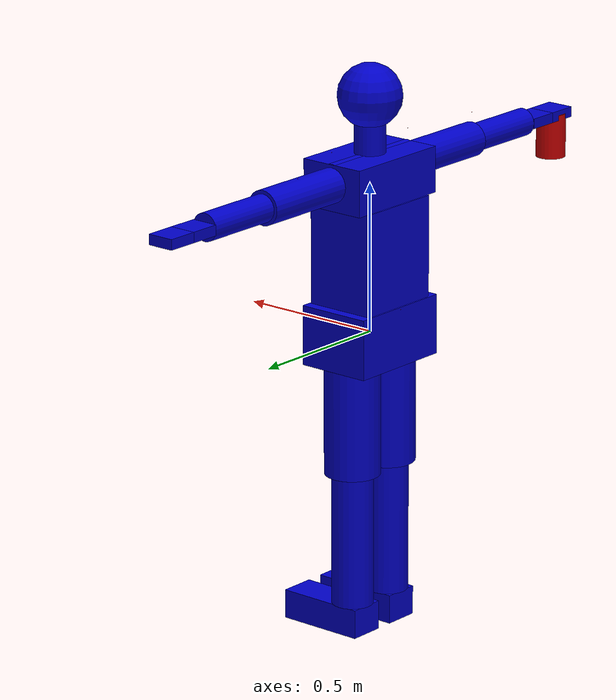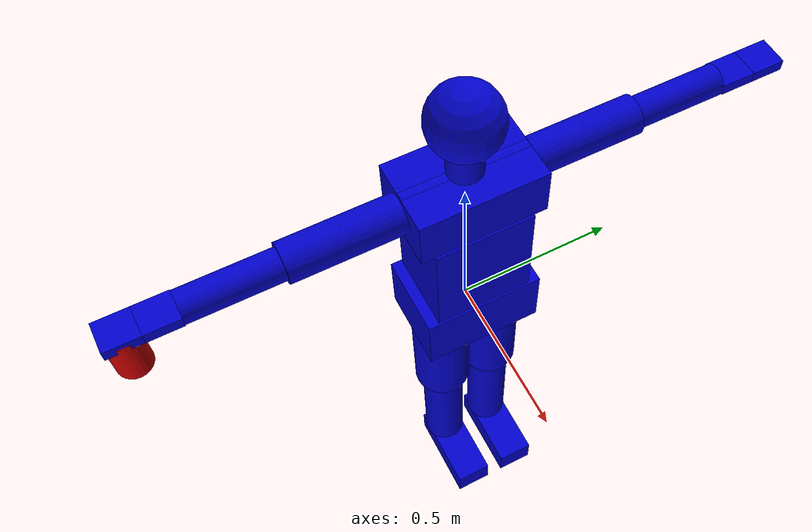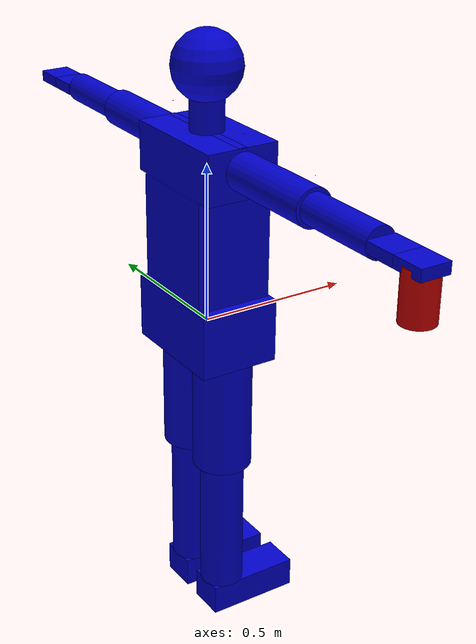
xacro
<?xml version='1.0' encoding='UTF-8'?>
<robot xmlns:xacro="http://www.ros.org/wiki/xacro" name="dhm">
	<xacro:property name="bodyHeight" value="1.9"/>
	<xacro:property name="BMI" value="29.91689750692521"/>
	<xacro:property name="isBMIgreaterThanAverage" value="0"/>
	<xacro:property name="PI" value="3.1415926535897931"/>
	<xacro:property name="bodyMass" value="108"/>
	<xacro:property name="maxVelJoint" value="10.0"/>
	<xacro:property name="forceCapacity" value="1.0"/>
	<xacro:property name="jointDamping" value="0.1"/>
	<xacro:property name="jointFriction" value="0."/>
	<xacro:property name="S5_L5" value="0.108316"/>
	<xacro:property name="L5_T8" value="0.341289"/>
	<xacro:property name="T8_C7" value="0.154148"/>
	<xacro:property name="C7_C1" value="0.102566"/>
	<xacro:property name="C1_headtop" value="0.190476"/>
	<xacro:property name="head_radius" value="0.10656600000000001"/>
	<xacro:property name="headbase_headtop" value="${1.1*C1_headtop}"/>
	<xacro:property name="r_armLength" value="0.331994"/>
	<xacro:property name="r_forearmLength" value="0.271576"/>
	<xacro:property name="r_handLength" value="0.20327"/>
	<xacro:property name="r_spine_shoulder" value="0.18906"/>
	<xacro:property name="r_T8_CSJheight" value="0.086386"/>
	<xacro:property name="r_spine_CSJ" value="0.033455"/>
	<xacro:property name="r_shoulderWidth" value="0.155605"/>
	<xacro:property name="l_armLength" value="0.331994"/>
	<xacro:property name="l_forearmLength" value="0.271576"/>
	<xacro:property name="l_handLength" value="0.20327"/>
	<xacro:property name="l_spine_shoulder" value="0.18906"/>
	<xacro:property name="l_T8_CSJheight" value="0.086386"/>
	<xacro:property name="l_spine_CSJ" value="0.033455"/>
	<xacro:property name="l_shoulderWidth" value="0.155605"/>
	<xacro:property name="r_hipWidth" value="0.088907"/>
	<xacro:property name="r_legLength" value="0.460135"/>
	<xacro:property name="r_shankLength" value="0.450138"/>
	<xacro:property name="r_footThickness" value="0.097768"/>
	<xacro:property name="r_footFrontLength" value="0.25538700000000003"/>
	<xacro:property name="r_footRearLength" value="0.044611"/>
	<xacro:property name="l_hipWidth" value="0.088907"/>
	<xacro:property name="l_legLength" value="0.460135"/>
	<xacro:property name="l_shankLength" value="0.450138"/>
	<xacro:property name="l_footThickness" value="0.097768"/>
	<xacro:property name="l_footFrontLength" value="0.25538700000000003"/>
	<xacro:property name="l_footRearLength" value="0.044611"/>
	<xacro:property name="slimBMI" value="17"/>
	<xacro:property name="normBMI" value="22"/>
	<xacro:property name="fatBMI" value="40"/>
	<xacro:property name="slimAlpha" value="0.9"/>
	<xacro:property name="normAlpha" value="1.0"/>
	<xacro:property name="fatAlpha" value="1.3"/>
	<xacro:if value="${isBMIgreaterThanAverage == 1}">
		<xacro:property name="alpha" value="${1 + (fatAlpha  - normAlpha) * (BMI - normBMI) / (fatBMI - normBMI)}"/>
	</xacro:if>
	<xacro:if value="${isBMIgreaterThanAverage == 0}">
		<xacro:property name="alpha" value="${1 - (normAlpha - slimAlpha) * (normBMI - BMI) / (normBMI - slimBMI)}"/>
	</xacro:if>
	<xacro:property name="collision_width_factor" value="0.66"/>
	<xacro:property name="collision_height_factor" value="0.95"/>
	<xacro:property name="collision_depth_factor" value="0.66"/>
	<xacro:property name="hip_thickness" value="${alpha*0.08}"/>
	<xacro:property name="pelvis_length" value="${S5_L5 + hip_thickness}"/>
	<xacro:property name="pelvis_width" value="${r_hipWidth + l_hipWidth + 0.7*hip_thickness + alpha*0.11}"/>
	<xacro:property name="pelvis_depth" value="${2*alpha*0.11}"/>
	<xacro:property name="lumbarspine_length" value="${L5_T8}"/>
	<xacro:property name="lumbarspine_width" value="${r_hipWidth + l_hipWidth + alpha*0.105}"/>
	<xacro:property name="lumbarspine_depth" value="${2*alpha*0.105}"/>
	<xacro:property name="thoracicspine_length" value="${T8_C7}"/>
	<xacro:property name="thoracicspine_width" value="${0.7*(r_spine_shoulder + l_spine_shoulder) +alpha*0.10}"/>
	<xacro:property name="thoracicspine_depth" value="${2*alpha*0.10}"/>
	<xacro:property name="neck_length" value="${C7_C1}"/>
	<xacro:property name="neck_radius" value="${alpha*0.045}"/>
	<xacro:property name="head_length" value="${headbase_headtop}"/>
	<xacro:property name="r_clavicular_length" value="${r_shoulderWidth}"/>
	<xacro:property name="l_clavicular_length" value="${l_shoulderWidth}"/>
	<xacro:property name="clavicular_radius" value="${alpha*0.06}"/>
	<xacro:property name="r_arm_length" value="${r_armLength}"/>
	<xacro:property name="l_arm_length" value="${l_armLength}"/>
	<xacro:property name="arm_radius" value="${alpha*0.05}"/>
	<xacro:property name="r_forearm_length" value="${r_forearmLength}"/>
	<xacro:property name="l_forearm_length" value="${l_forearmLength}"/>
	<xacro:property name="forearm_radius" value="${alpha*0.04}"/>
	<xacro:property name="r_palm_length" value="${0.5*r_handLength}"/>
	<xacro:property name="l_palm_length" value="${0.5*l_handLength}"/>
	<xacro:property name="palm_width" value="${2*alpha*0.04}"/>
	<xacro:property name="palm_depth" value="${2*alpha*0.015}"/>
	<xacro:property name="r_fingers_length" value="${0.5*r_handLength}"/>
	<xacro:property name="l_fingers_length" value="${0.5*l_handLength}"/>
	<xacro:property name="fingers_width" value="${palm_width}"/>
	<xacro:property name="fingers_depth" value="${palm_depth}"/>
	<xacro:property name="r_thigh_length" value="${r_legLength}"/>
	<xacro:property name="l_thigh_length" value="${l_legLength}"/>
	<xacro:property name="thigh_radius" value="${alpha*0.08}"/>
	<xacro:property name="r_shank_length" value="${r_shankLength}"/>
	<xacro:property name="l_shank_length" value="${l_shankLength}"/>
	<xacro:property name="shank_radius" value="${alpha*0.06}"/>
	<xacro:property name="r_foot_length" value="${r_footFrontLength + r_footRearLength}"/>
	<xacro:property name="l_foot_length" value="${l_footFrontLength + l_footRearLength}"/>
	<xacro:property name="r_foot_width" value="${0.4*r_foot_length}"/>
	<xacro:property name="l_foot_width" value="${0.4*l_foot_length}"/>
	<xacro:property name="r_foot_depth" value="${r_footThickness}"/>
	<xacro:property name="l_foot_depth" value="${l_footThickness}"/>
	<xacro:property name="massNorm" value="${-0.0426 + 1.00096*bodyMass + 0.00058*bodyHeight*100}"/>
	<xacro:property name="lowertorso_mass" value="${bodyMass * (-7.498 + 0.0976*bodyMass + 0.04896*bodyHeight*100) / massNorm}"/>
	<xacro:property name="middletorso_mass" value="${bodyMass * (7.181 + 0.2234*bodyMass - 0.0663*bodyHeight*100) / massNorm}"/>
	<xacro:property name="uppertorso_mass" value="${bodyMass * (8.2144 + 0.1862*bodyMass - 0.0584*bodyHeight*100) / massNorm}"/>
	<xacro:property name="pelvis_mass" value="${lowertorso_mass}"/>
	<xacro:property name="lumbarspine_mass" value="${middletorso_mass}"/>
	<xacro:property name="thoracicspine_mass" value="${(1.0-0.1)*uppertorso_mass}"/>
	<xacro:property name="neckandhead_mass" value="${bodyMass * (1.296 + 0.0171*bodyMass + 0.0143*bodyHeight*100) / massNorm}"/>
	<xacro:property name="neck_mass" value="${0.1*neckandhead_mass}"/>
	<xacro:property name="head_mass" value="${0.9*neckandhead_mass}"/>
	<xacro:property name="clavicular_mass" value="${0.05*uppertorso_mass}"/>
	<xacro:property name="arm_mass" value="${bodyMass * (0.25 + 0.03012*bodyMass - 0.0027*bodyHeight*100) / massNorm}"/>
	<xacro:property name="forearm_mass" value="${bodyMass * (0.3185 + 0.01445*bodyMass - 0.00114*bodyHeight*100) / massNorm}"/>
	<xacro:property name="hand_mass" value="${bodyMass * (-0.1165 + 0.0036*bodyMass + 0.00175*bodyHeight*100) / massNorm}"/>
	<xacro:property name="palm_mass" value="${0.7*hand_mass}"/>
	<xacro:property name="fingers_mass" value="${0.3*hand_mass}"/>
	<xacro:property name="thigh_mass" value="${bodyMass * (-2.649 + 0.1463*bodyMass + 0.0137*bodyHeight*100) / massNorm}"/>
	<xacro:property name="shank_mass" value="${bodyMass * (-1.592 + 0.03616*bodyMass + 0.0121*bodyHeight*100) / massNorm}"/>
	<xacro:property name="foot_mass" value="${bodyMass * (-0.829 + 0.0077*bodyMass + 0.0073*bodyHeight*100) / massNorm}"/>
	<xacro:property name="massSensor" value="0.000000001"/>
	<xacro:property name="radius_load" value="0.05"/>
	<xacro:property name="length_load" value="0.15"/>
	<xacro:property name="mass_load" value="0.780"/>
	<xacro:macro name="box_inertia" params="m Lx Ly Lz">
		<inertia ixx="${1/12 * m * (Ly*Ly + Lz*Lz)}" ixy="0" ixz="0" iyy="${1/12 * m * (Lx*Lx + Lz*Lz)}" iyz="0" izz="${1/12 * m * (Lx*Lx + Ly*Ly)}"/>
	</xacro:macro>
	<xacro:macro name="cylinder_inertia" params="m L r">
		<inertia ixx="${1/12 * m * (3*r*r + L*L)}" ixy="0" ixz="0" iyy="${1/12 * m * (3*r*r + L*L)}" iyz="0" izz="${1/2 * m * r*r}"/>
	</xacro:macro>
	<xacro:macro name="sphere_inertia" params="m r">
		<inertia ixx="${2/5 * m * r*r}" ixy="0" ixz="0" iyy="${2/5 * m * r*r}" iyz="0" izz="${2/5 * m * r*r}"/>
	</xacro:macro>
	<xacro:property name="virtual_radius" value="0.001"/>
	<xacro:macro name="virtual_body" params="name m">
		<link name="${name}">
			<inertial>
				<mass value="${m}"/>
				<origin rpy="0 0 0" xyz="0 0 0"/>
				<sphere_inertia m="${m}" r="${virtual_radius}"/>
			</inertial>
		</link>
	</xacro:macro>
	<material name="blue">
		<color rgba="0 0 0.8 1"/>
	</material>
	<material name="red">
		<color rgba="0.8 0 0 1"/>
	</material>
	<link name="pelvis">
		<visual>
			<geometry>
				<box size="${pelvis_depth} ${pelvis_width} ${pelvis_length}"/>
			</geometry>
			<origin rpy="0 0 0" xyz="0 0 ${pelvis_length/2-hip_thickness}"/>
			<material name="blue"/>
		</visual>
		<collision>
			<geometry>
				<box size="${pelvis_depth} ${pelvis_width} ${pelvis_length}"/>
			</geometry>
			<origin rpy="0 0 0" xyz="0 0 ${pelvis_length/2-hip_thickness}"/>
		</collision>
		<inertial>
			<mass value="${0.7*pelvis_mass}"/>
			<origin rpy="0 0 0" xyz="0 0 ${pelvis_length/2-hip_thickness}"/>
			<box_inertia Lx="${pelvis_depth}" Ly="${pelvis_width}" Lz="${pelvis_length}" m="${0.7*pelvis_mass}"/>
		</inertial>
	</link>
	<virtual_body m="${0.1*pelvis_mass}" name="body_L5_1"/>
	<virtual_body m="${0.1*lumbarspine_mass}" name="body_L5_2"/>
	<link name="lumbar_spine">
		<visual>
			<geometry>
				<box size="${lumbarspine_depth} ${lumbarspine_width} ${lumbarspine_length}"/>
			</geometry>
			<origin rpy="0 0 0" xyz="0 0 ${lumbarspine_length/2}"/>
			<material name="blue"/>
		</visual>
		<collision>
			<geometry>
				<box size="${lumbarspine_depth} ${lumbarspine_width} ${lumbarspine_length}"/>
			</geometry>
			<origin rpy="0 0 0" xyz="0 0 ${lumbarspine_length/2}"/>
		</collision>
		<inertial>
			<mass value="${0.8*lumbarspine_mass}"/>
			<origin rpy="0 0 0" xyz="0 0 ${lumbarspine_length/2}"/>
			<box_inertia Lx="${lumbarspine_depth}" Ly="${lumbarspine_width}" Lz="${lumbarspine_length}" m="${0.8*lumbarspine_mass}"/>
		</inertial>
	</link>
	<virtual_body m="${0.1*lumbarspine_mass}" name="body_T8_1"/>
	<virtual_body m="${0.1*thoracicspine_mass}" name="body_T8_2"/>
	<link name="thoracic_spine">
		<visual>
			<geometry>
				<box size="${thoracicspine_depth} ${thoracicspine_width} ${thoracicspine_length}"/>
			</geometry>
			<origin rpy="0 0 0" xyz="0 0 ${thoracicspine_length/2}"/>
			<material name="blue"/>
		</visual>
		<collision>
			<geometry>
				<box size="${thoracicspine_depth} ${thoracicspine_width} ${thoracicspine_length}"/>
			</geometry>
			<origin rpy="0 0 0" xyz="0 0 ${thoracicspine_length/2}"/>
		</collision>
		<inertial>
			<mass value="${0.65*thoracicspine_mass}"/>
			<origin rpy="0 0 0" xyz="0 0 ${thoracicspine_length/2}"/>
			<box_inertia Lx="${thoracicspine_depth}" Ly="${thoracicspine_width}" Lz="${thoracicspine_length}" m="${0.65*thoracicspine_mass}"/>
		</inertial>
	</link>
	<virtual_body m="${0.05*thoracicspine_mass}" name="body_C7_1"/>
	<virtual_body m="${0.2*neck_mass}" name="body_C7_2"/>
	<link name="neck">
		<visual>
			<geometry>
				<cylinder length="${neck_length}" radius="${neck_radius}"/>
			</geometry>
			<origin rpy="0 0 0" xyz="0 0 ${neck_length/2}"/>
			<material name="blue"/>
		</visual>
		<collision>
			<geometry>
				<box size="${neck_radius*2} ${neck_radius*2} ${neck_length}"/>
			</geometry>
			<origin rpy="0 0 0" xyz="0 0 ${neck_length/2}"/>
		</collision>
		<inertial>
			<mass value="${0.8*neck_mass}"/>
			<origin rpy="0 0 0" xyz="0 0 ${neck_length/2}"/>
			<cylinder_inertia L="${neck_length}" m="${0.8*neck_mass}" r="${neck_radius}"/>
		</inertial>
	</link>
	<virtual_body m="${0.1*head_mass}" name="body_C1"/>
	<link name="head">
		<visual>
			<geometry>
				<sphere radius="${head_radius}"/>
			</geometry>
			<origin rpy="0 0 0" xyz="0 0 ${C1_headtop - headbase_headtop/2}"/>
			<material name="blue"/>
		</visual>
		<collision>
			<geometry>
				<sphere radius="${head_radius*0.8}"/>
			</geometry>
			<origin rpy="0 0 0" xyz="0 0 ${C1_headtop - headbase_headtop/2}"/>
		</collision>
		<inertial>
			<mass value="${0.9*head_mass}"/>
			<origin rpy="0 0 0" xyz="0 0 ${C1_headtop - headbase_headtop/2}"/>
			<cylinder_inertia L="${head_length}" m="${0.9*head_mass}" r="${head_radius}"/>
		</inertial>
	</link>
	<virtual_body m="${0.1*thoracicspine_mass}" name="body_T4_right_clavicular"/>
	<link name="right_clavicular">
		<visual>
			<geometry>
				<cylinder length="${r_clavicular_length}" radius="${clavicular_radius}"/>
			</geometry>
			<origin rpy="${PI/2} 0 0" xyz="0 ${-r_clavicular_length/2} 0"/>
			<material name="blue"/>
		</visual>
		<inertial>
			<mass value="${0.9*clavicular_mass}"/>
			<origin rpy="${PI/2} 0 0" xyz="0 ${-r_clavicular_length/2} 0"/>
			<cylinder_inertia L="${r_clavicular_length}" m="${0.9*clavicular_mass}" r="${clavicular_radius}"/>
		</inertial>
	</link>
	<virtual_body m="${0.1*clavicular_mass}" name="body_right_shoulder_1"/>
	<virtual_body m="${0.1*arm_mass}" name="body_right_shoulder_2"/>
	<link name="right_arm">
		<visual>
			<geometry>
				<cylinder length="${r_arm_length}" radius="${arm_radius}"/>
			</geometry>
			<origin rpy="${PI/2} 0 0" xyz="0 ${-r_arm_length/2} 0"/>
			<material name="blue"/>
		</visual>
		<collision>
			<geometry>
				<box size="${arm_radius*cos(PI/4)*2} ${arm_radius*cos(PI/4)*2} ${r_arm_length}"/>
			</geometry>
			<origin rpy="${PI/2} 0 0" xyz="0 ${-r_arm_length/2} 0"/>
		</collision>
		<inertial>
			<mass value="${0.8*arm_mass}"/>
			<origin rpy="${PI/2} 0 0" xyz="0 ${-r_arm_length/2} 0"/>
			<cylinder_inertia L="${r_arm_length}" m="${0.8*arm_mass}" r="${arm_radius}"/>
		</inertial>
	</link>
	<virtual_body m="${0.1*arm_mass}" name="body_right_elbow"/>
	<link name="right_forearm">
		<visual>
			<geometry>
				<cylinder length="${r_forearm_length}" radius="${forearm_radius}"/>
			</geometry>
			<origin rpy="${PI/2} 0 0" xyz="0 ${-r_forearm_length/2} 0"/>
			<material name="blue"/>
		</visual>
		<collision>
			<geometry>
				<box size="${forearm_radius*cos(PI/4)*2} ${forearm_radius*cos(PI/4)*2} ${r_forearm_length}"/>
			</geometry>
			<origin rpy="${PI/2} 0 0" xyz="0 ${-r_forearm_length/2} 0"/>
		</collision>
		<inertial>
			<mass value="${0.9*forearm_mass}"/>
			<origin rpy="${PI/2} 0 0" xyz="0 ${-r_forearm_length/2} 0"/>
			<cylinder_inertia L="${-r_forearm_length}" m="${0.9*forearm_mass}" r="${forearm_radius}"/>
		</inertial>
	</link>
	<virtual_body m="${0.1*forearm_mass}" name="body_right_wrist"/>
	<link name="right_palm">
		<visual>
			<geometry>
				<box size="${palm_width} ${palm_depth} ${r_palm_length}"/>
			</geometry>
			<origin rpy="${PI/2} 0 0" xyz="0 ${-r_palm_length/2} 0"/>
			<material name="blue"/>
		</visual>
		<collision>
			<geometry>
				<box size="${palm_width} ${palm_depth} ${r_palm_length} "/>
			</geometry>
			<origin rpy="${PI/2} 0 0" xyz="0 ${-r_palm_length/2} 0"/>
		</collision>
		<inertial>
			<mass value="${palm_mass}"/>
			<origin rpy="${PI/2} 0 0" xyz="0 ${-r_palm_length/2} 0"/>
			<box_inertia Lx="${palm_width}" Ly="${palm_depth}" Lz="${r_palm_length}" m="${palm_mass}"/>
		</inertial>
	</link>
	<link name="right_fingers">
		<visual>
			<geometry>
				<box size="${fingers_width} ${fingers_depth} ${r_fingers_length}"/>
			</geometry>
			<origin rpy="${PI/2} 0 0" xyz="0 ${-r_fingers_length/2} 0"/>
			<material name="blue"/>
		</visual>
		<collision>
			<geometry>
				<box size="${fingers_width} ${fingers_depth} ${r_fingers_length} "/>
			</geometry>
			<origin rpy="${PI/2} 0 0" xyz="0 ${-r_fingers_length/2} 0"/>
		</collision>
		<inertial>
			<mass value="${fingers_mass}"/>
			<origin rpy="${PI/2} 0 0" xyz="0 ${-r_fingers_length/2} 0"/>
			<box_inertia Lx="${fingers_width}" Ly="${fingers_depth}" Lz="${r_fingers_length}" m="${fingers_mass}"/>
		</inertial>
	</link>
	<link name="right_load">
		<visual>
			<geometry>
				<cylinder length="${length_load}" radius="${radius_load}"/>
			</geometry>
			<origin rpy="0 0 0" xyz="0 0 0"/>
			<material name="red"/>
		</visual>
		<inertial>
			<mass value="${mass_load}"/>
			<origin rpy="0 0 0" xyz="0 0 0"/>
			<cylinder_inertia L="${length_load}" m="${mass_load}" r="${radius_load}"/>
		</inertial>
	</link>
	<virtual_body m="${0.1*thoracicspine_mass}" name="body_T4_left_clavicular"/>
	<link name="left_clavicular">
		<visual>
			<geometry>
				<cylinder length="${l_clavicular_length}" radius="${clavicular_radius}"/>
			</geometry>
			<origin rpy="${PI/2} 0 0" xyz="0 ${l_clavicular_length/2} 0"/>
			<material name="blue"/>
		</visual>
		<inertial>
			<mass value="${0.9*clavicular_mass}"/>
			<origin rpy="${PI/2} 0 0" xyz="0 ${l_clavicular_length/2} 0"/>
			<cylinder_inertia L="${l_clavicular_length}" m="${0.9*clavicular_mass}" r="${clavicular_radius}"/>
		</inertial>
	</link>
	<virtual_body m="${0.1*clavicular_mass}" name="body_left_shoulder_1"/>
	<virtual_body m="${0.1*arm_mass}" name="body_left_shoulder_2"/>
	<link name="left_arm">
		<visual>
			<geometry>
				<cylinder length="${l_arm_length}" radius="${arm_radius}"/>
			</geometry>
			<origin rpy="${PI/2} 0 0" xyz="0 ${l_arm_length/2} 0"/>
			<material name="blue"/>
		</visual>
		<collision>
			<geometry>
				<box size="${arm_radius*cos(PI/4)*2} ${arm_radius*cos(PI/4)*2} ${l_arm_length}"/>
			</geometry>
			<origin rpy="${PI/2} 0 0" xyz="0 ${l_arm_length/2} 0"/>
		</collision>
		<inertial>
			<mass value="${0.8*arm_mass}"/>
			<origin rpy="${PI/2} 0 0" xyz="0 ${l_arm_length/2} 0"/>
			&gt;
			<cylinder_inertia L="${l_arm_length}" m="${0.8*arm_mass}" r="${arm_radius}"/>
		</inertial>
	</link>
	<virtual_body m="${0.1*arm_mass}" name="body_left_elbow"/>
	<link name="left_forearm">
		<visual>
			<geometry>
				<cylinder length="${l_forearm_length}" radius="${forearm_radius}"/>
			</geometry>
			<origin rpy="${PI/2} 0 0" xyz="0 ${l_forearm_length/2} 0"/>
			<material name="blue"/>
		</visual>
		<collision>
			<geometry>
				<box size="${forearm_radius*cos(PI/4)*2} ${forearm_radius*cos(PI/4)*2} ${l_forearm_length}"/>
			</geometry>
			<origin rpy="${PI/2} 0 0" xyz="0 ${l_forearm_length/2} 0"/>
		</collision>
		<inertial>
			<mass value="${0.9*forearm_mass}"/>
			<origin rpy="${PI/2} 0 0" xyz="0 ${l_forearm_length/2} 0"/>
			<cylinder_inertia L="${l_forearm_length}" m="${0.9*forearm_mass}" r="${forearm_radius}"/>
		</inertial>
	</link>
	<virtual_body m="${0.1*forearm_mass}" name="body_left_wrist"/>
	<link name="left_palm">
		<visual>
			<geometry>
				<box size="${palm_width} ${palm_depth} ${l_palm_length}"/>
			</geometry>
			<origin rpy="${PI/2} 0 0" xyz="0 ${l_palm_length/2} 0"/>
			<material name="blue"/>
		</visual>
		<collision>
			<geometry>
				<box size="${palm_width} ${palm_depth} ${l_palm_length}"/>
			</geometry>
			<origin rpy="${PI/2} 0 0" xyz="0 ${l_palm_length/2} 0"/>
		</collision>
		<inertial>
			<mass value="${palm_mass}"/>
			<origin rpy="${PI/2} 0 0" xyz="0 ${l_palm_length/2} 0"/>
			<box_inertia Lx="${palm_width}" Ly="${palm_depth}" Lz="${l_palm_length}" m="${palm_mass}"/>
		</inertial>
	</link>
	<link name="left_fingers">
		<visual>
			<geometry>
				<box size="${fingers_width} ${fingers_depth} ${l_fingers_length}"/>
			</geometry>
			<origin rpy="${PI/2} 0 0" xyz="0 ${l_fingers_length/2} 0"/>
			<material name="blue"/>
		</visual>
		<collision>
			<geometry>
				<box size="${fingers_width} ${fingers_depth} ${l_fingers_length}"/>
			</geometry>
			<origin rpy="${PI/2} 0 0" xyz="0 ${l_fingers_length/2} 0"/>
		</collision>
		<inertial>
			<mass value="${fingers_mass}"/>
			<origin rpy="${PI/2} 0 0" xyz="0 ${l_fingers_length/2} 0"/>
			<box_inertia Lx="${fingers_width}" Ly="${fingers_depth}" Lz="${l_fingers_length}" m="${fingers_mass}"/>
		</inertial>
	</link>
	<virtual_body m="${0.1*pelvis_mass}" name="body_right_hip_1"/>
	<virtual_body m="${0.1*thigh_mass}" name="body_right_hip_2"/>
	<link name="right_thigh">
		<visual>
			<geometry>
				<cylinder length="${r_thigh_length}" radius="${thigh_radius}"/>
			</geometry>
			<origin rpy="0 0 0" xyz="0 0 ${-r_thigh_length/2}"/>
			<material name="blue"/>
		</visual>
		<collision>
			<geometry>
				<box size="${thigh_radius*cos(PI/4)*2} ${thigh_radius*cos(PI/4)*2} ${r_thigh_length}"/>
			</geometry>
			<origin rpy="0 0 0" xyz="0 0 ${-r_thigh_length/2}"/>
		</collision>
		<inertial>
			<mass value="${0.8*thigh_mass}"/>
			<origin rpy="0 0 0" xyz="0 0 ${-r_thigh_length/2}"/>
			<cylinder_inertia L="${r_thigh_length}" m="${0.8*thigh_mass}" r="${thigh_radius}"/>
		</inertial>
	</link>
	<virtual_body m="${0.1*thigh_mass}" name="body_right_knee"/>
	<link name="right_shank">
		<visual>
			<geometry>
				<cylinder length="${r_shank_length}" radius="${shank_radius}"/>
			</geometry>
			<origin rpy="0 0 0" xyz="0 0 ${-r_shank_length/2}"/>
			<material name="blue"/>
		</visual>
		<collision>
			<geometry>
				<box size="${shank_radius*cos(PI/4)*2} ${shank_radius*cos(PI/4)*2} ${r_shank_length}"/>
			</geometry>
			<origin rpy="0 0 0" xyz="0 0 ${-r_shank_length/2}"/>
		</collision>
		<inertial>
			<mass value="${0.9*shank_mass}"/>
			<origin rpy="0 0 0" xyz="0 0 ${-r_shank_length/2}"/>
			<cylinder_inertia L="${r_shank_length}" m="${0.9*shank_mass}" r="${shank_radius}"/>
		</inertial>
	</link>
	<virtual_body m="${0.1*shank_mass}" name="body_right_ankle"/>
	<link name="right_foot">
		<visual>
			<geometry>
				<box size="${r_foot_length} ${r_foot_width} ${r_foot_depth}"/>
			</geometry>
			<origin rpy="0 0 0" xyz="${r_foot_length/2-0.2*r_foot_length} 0 ${-r_foot_depth/2}"/>
			<material name="blue"/>
		</visual>
		<collision>
			<geometry>
				<box size="${r_foot_length} ${r_foot_width} ${r_foot_depth}"/>
			</geometry>
			<origin rpy="0 0 0" xyz="${r_foot_length/2-0.2*r_foot_length} 0 ${-r_foot_depth/2}"/>
		</collision>
		<inertial>
			<mass value="${foot_mass}"/>
			<origin rpy="0 0 0" xyz="${r_foot_length/2-0.2*r_foot_length} 0 ${-r_foot_depth/2}"/>
			<box_inertia Lx="${r_foot_length}" Ly="${r_foot_width}" Lz="${r_foot_depth}" m="${foot_mass}"/>
		</inertial>
	</link>
	<virtual_body m="${0.1*pelvis_mass}" name="body_left_hip_1"/>
	<virtual_body m="${0.1*thigh_mass}" name="body_left_hip_2"/>
	<link name="left_thigh">
		<visual>
			<geometry>
				<cylinder length="${l_thigh_length}" radius="${thigh_radius}"/>
			</geometry>
			<origin rpy="0 0 0" xyz="0 0 ${-l_thigh_length/2}"/>
			<material name="blue"/>
		</visual>
		<collision>
			<geometry>
				<box size="${thigh_radius*cos(PI/4)*2} ${thigh_radius*cos(PI/4)*2} ${l_thigh_length}"/>
			</geometry>
			<origin rpy="0 0 0" xyz="0 0 ${-l_thigh_length/2}"/>
			&gt;
		</collision>
		<inertial>
			<mass value="${0.8*thigh_mass}"/>
			<origin rpy="0 0 0" xyz="0 0 ${-l_thigh_length/2}"/>
			<cylinder_inertia L="${l_thigh_length}" m="${0.8*thigh_mass}" r="${thigh_radius}"/>
		</inertial>
	</link>
	<virtual_body m="${0.1*thigh_mass}" name="body_left_knee"/>
	<link name="left_shank">
		<visual>
			<geometry>
				<cylinder length="${l_shank_length}" radius="${shank_radius}"/>
			</geometry>
			<origin rpy="0 0 0" xyz="0 0 ${-l_shank_length/2}"/>
			<material name="blue"/>
		</visual>
		<collision>
			<geometry>
				<box size="${shank_radius*cos(PI/4)*2} ${shank_radius*cos(PI/4)*2} ${l_shank_length}"/>
			</geometry>
			<origin rpy="0 0 0" xyz="0 0 ${-l_shank_length/2}"/>
		</collision>
		<inertial>
			<mass value="${0.9*shank_mass}"/>
			<origin rpy="0 0 0" xyz="0 0 ${-l_shank_length/2}"/>
			<cylinder_inertia L="${l_shank_length}" m="${0.9*shank_mass}" r="${shank_radius}"/>
		</inertial>
	</link>
	<virtual_body m="${0.1*shank_mass}" name="body_left_ankle"/>
	<link name="left_foot">
		<visual>
			<geometry>
				<box size="${l_foot_length} ${l_foot_width} ${l_foot_depth}"/>
			</geometry>
			<origin rpy="0 0 0" xyz="${l_foot_length/2-0.2*l_foot_length} 0 ${-l_foot_depth/2}"/>
			<material name="blue"/>
		</visual>
		<collision>
			<geometry>
				<box size="${l_foot_length} ${l_foot_width} ${l_foot_depth}"/>
			</geometry>
			<origin rpy="0 0 0" xyz="${l_foot_length/2-0.2*l_foot_length} 0 ${-l_foot_depth/2}"/>
		</collision>
		<inertial>
			<mass value="${foot_mass}"/>
			<origin rpy="0 0 0" xyz="${l_foot_length/2-0.2*l_foot_length} 0 ${-l_foot_depth/2}"/>
			<box_inertia Lx="${l_foot_length}" Ly="${l_foot_width}" Lz="${l_foot_depth}" m="${foot_mass}"/>
		</inertial>
	</link>
	<joint name="lumbarspine_X" type="revolute">
		<parent link="pelvis"/>
		<child link="body_L5_1"/>
		<axis xyz="1 0 0"/>
		<origin xyz="0 0 ${S5_L5}"/>
		<limit effort="${155*forceCapacity}" lower="-0.7" upper="0.7" velocity="${maxVelJoint}"/>
		<dynamics damping="${jointDamping}" friction="${jointFriction}"/>
	</joint>
	<joint name="lumbarspine_Y" type="revolute">
		<parent link="body_L5_1"/>
		<child link="body_L5_2"/>
		<axis xyz="0 1 0"/>
		<origin xyz="0 0 0"/>
		<limit effort="${228*forceCapacity}" lower="-0.7" upper="0.9" velocity="${maxVelJoint}"/>
		<dynamics damping="${jointDamping}" friction="${jointFriction}"/>
	</joint>
	<joint name="lumbarspine_Z" type="revolute">
		<parent link="body_L5_2"/>
		<child link="lumbar_spine"/>
		<axis xyz="0 0 1"/>
		<origin xyz="0 0 0"/>
		<limit effort="${65*forceCapacity}" lower="-0.7" upper="0.7" velocity="${maxVelJoint}"/>
		<dynamics damping="${jointDamping}" friction="${jointFriction}"/>
	</joint>
	<joint name="thoracicspine_X" type="revolute">
		<parent link="lumbar_spine"/>
		<child link="body_T8_1"/>
		<axis xyz="1 0 0"/>
		<origin xyz="0 0 ${L5_T8}"/>
		<limit effort="${155*forceCapacity}" lower="-0.7" upper="0.7" velocity="${maxVelJoint}"/>
		<dynamics damping="${jointDamping}" friction="${jointFriction}"/>
	</joint>
	<joint name="thoracicspine_Y" type="revolute">
		<parent link="body_T8_1"/>
		<child link="body_T8_2"/>
		<axis xyz="0 1 0"/>
		<origin xyz="0 0 0"/>
		<limit effort="${228*forceCapacity}" lower="-0.7" upper="0.9" velocity="${maxVelJoint}"/>
		<dynamics damping="${jointDamping}" friction="${jointFriction}"/>
	</joint>
	<joint name="thoracicspine_Z" type="revolute">
		<parent link="body_T8_2"/>
		<child link="thoracic_spine"/>
		<axis xyz="0 0 1"/>
		<origin xyz="0 0 0"/>
		<limit effort="${65*forceCapacity}" lower="-0.7" upper="0.7" velocity="${maxVelJoint}"/>
		<dynamics damping="${jointDamping}" friction="${jointFriction}"/>
	</joint>
	<joint name="neck_X" type="revolute">
		<parent link="thoracic_spine"/>
		<child link="body_C7_1"/>
		<axis xyz="1 0 0"/>
		<origin xyz="0 0 ${T8_C7}"/>
		<limit effort="50" lower="-0.87" upper="0.87" velocity="${maxVelJoint}"/>
		<dynamics damping="${jointDamping}" friction="${jointFriction}"/>
	</joint>
	<joint name="neck_Y" type="revolute">
		<parent link="body_C7_1"/>
		<child link="body_C7_2"/>
		<axis xyz="0 1 0"/>
		<origin xyz="0 0 0"/>
		<limit effort="50" lower="-0.87" upper="1.5" velocity="${maxVelJoint}"/>
		<dynamics damping="${jointDamping}" friction="${jointFriction}"/>
	</joint>
	<joint name="neck_Z" type="revolute">
		<parent link="body_C7_2"/>
		<child link="neck"/>
		<axis xyz="0 0 1"/>
		<origin xyz="0 0 0"/>
		<limit effort="50" lower="-1.5" upper="1.5" velocity="${maxVelJoint}"/>
		<dynamics damping="${jointDamping}" friction="${jointFriction}"/>
	</joint>
	<joint name="head_X" type="revolute">
		<parent link="neck"/>
		<child link="body_C1"/>
		<axis xyz="1 0 0"/>
		<origin xyz="0 0 ${C7_C1}"/>
		<limit effort="20" lower="-0.87" upper="0.87" velocity="${maxVelJoint}"/>
		<dynamics damping="${jointDamping}" friction="${jointFriction}"/>
	</joint>
	<joint name="head_Y" type="revolute">
		<parent link="body_C1"/>
		<child link="head"/>
		<axis xyz="0 1 0"/>
		<origin xyz="0 0 0"/>
		<limit effort="20" lower="-0.87" upper="1.5" velocity="${maxVelJoint}"/>
		<dynamics damping="${jointDamping}" friction="${jointFriction}"/>
	</joint>
	<joint name="right_clavicular_X" type="revolute">
		<parent link="thoracic_spine"/>
		<child link="body_T4_right_clavicular"/>
		<axis xyz="1 0 0"/>
		<origin rpy="0 0 0" xyz="0 ${-r_spine_CSJ} ${r_T8_CSJheight}"/>
		<limit effort="${105*forceCapacity}" lower="-0.2" upper="0.4" velocity="${maxVelJoint}"/>
		<dynamics damping="${jointDamping}" friction="${jointFriction}"/>
	</joint>
	<joint name="right_clavicular_Z" type="revolute">
		<parent link="body_T4_right_clavicular"/>
		<child link="right_clavicular"/>
		<axis xyz="0 0 1"/>
		<origin xyz="0 0 0"/>
		<limit effort="${107*forceCapacity}" lower="-0.35" upper="0.35" velocity="${maxVelJoint}"/>
		<dynamics damping="${jointDamping}" friction="${jointFriction}"/>
	</joint>
	<joint name="right_shoulder_X" type="revolute">
		<parent link="right_clavicular"/>
		<child link="body_right_shoulder_1"/>
		<axis xyz="1 0 0"/>
		<origin xyz="0 ${-r_shoulderWidth} 0"/>
		<limit effort="${69*forceCapacity}" lower="-1.57" upper="2.4" velocity="${maxVelJoint}"/>
		<dynamics damping="${jointDamping}" friction="${jointFriction}"/>
	</joint>
	<joint name="right_shoulder_Y" type="revolute">
		<parent link="body_right_shoulder_1"/>
		<child link="body_right_shoulder_2"/>
		<axis xyz="0 1 0"/>
		<origin xyz="0 0 0"/>
		<limit effort="${90*forceCapacity}" lower="-1.57" upper="0.78" velocity="${maxVelJoint}"/>
		<dynamics damping="${jointDamping}" friction="${jointFriction}"/>
	</joint>
	<joint name="right_shoulder_Z" type="revolute">
		<parent link="body_right_shoulder_2"/>
		<child link="right_arm"/>
		<axis xyz="0 0 1"/>
		<origin xyz="0 0 0"/>
		<limit effort="${51*forceCapacity}" lower="-1.57" upper="3.14" velocity="${maxVelJoint}"/>
		<dynamics damping="${jointDamping}" friction="${jointFriction}"/>
	</joint>
	<joint name="right_elbow_Z" type="revolute">
		<parent link="right_arm"/>
		<child link="body_right_elbow"/>
		<axis xyz="0 0 1"/>
		<origin xyz="0 ${-r_arm_length} 0"/>
		<limit effort="${75*forceCapacity}" lower="-0.08" upper="3.14" velocity="${maxVelJoint}"/>
		<dynamics damping="${jointDamping}" friction="${jointFriction}"/>
	</joint>
	<joint name="right_elbow_Y" type="revolute">
		<parent link="body_right_elbow"/>
		<child link="right_forearm"/>
		<axis xyz="0 1 0"/>
		<origin xyz="0 0 0"/>
		<limit effort="${13*forceCapacity}" lower="-1.97" upper="1.35" velocity="${maxVelJoint}"/>
		<dynamics damping="${jointDamping}" friction="${jointFriction}"/>
	</joint>
	<joint name="right_wrist_X" type="revolute">
		<parent link="right_forearm"/>
		<child link="body_right_wrist"/>
		<axis xyz="1 0 0"/>
		<origin xyz="0 ${-r_forearm_length} 0"/>
		<limit effort="${11*forceCapacity}" lower="-1.57" upper="1.57" velocity="${maxVelJoint}"/>
		<dynamics damping="${jointDamping}" friction="${jointFriction}"/>
	</joint>
	<joint name="right_wrist_Z" type="revolute">
		<parent link="body_right_wrist"/>
		<child link="right_palm"/>
		<axis xyz="0 0 1"/>
		<origin xyz="0 0 0"/>
		<limit effort="${10*forceCapacity}" lower="-0.82" upper="0.47" velocity="${maxVelJoint}"/>
		<dynamics damping="${jointDamping}" friction="${jointFriction}"/>
	</joint>
	<joint name="right_grip" type="fixed">
		<parent link="right_palm"/>
		<child link="right_fingers"/>
		<origin rpy="0 0 0 " xyz="0 ${-r_palm_length} 0"/>
	</joint>
	<joint name="left_clavicular_X" type="revolute">
		<parent link="thoracic_spine"/>
		<child link="body_T4_left_clavicular"/>
		<axis xyz="1 0 0"/>
		<origin rpy="0 0 0" xyz="0 ${l_spine_CSJ} ${l_T8_CSJheight}"/>
		<limit effort="${105*forceCapacity}" lower="-0.4" upper="0.2" velocity="${maxVelJoint}"/>
		<dynamics damping="${jointDamping}" friction="${jointFriction}"/>
	</joint>
	<joint name="left_clavicular_Z" type="revolute">
		<parent link="body_T4_left_clavicular"/>
		<child link="left_clavicular"/>
		<axis xyz="0 0 1"/>
		<origin xyz="0 0 0"/>
		<limit effort="${107*forceCapacity}" lower="-0.35" upper="0.35" velocity="${maxVelJoint}"/>
		<dynamics damping="${jointDamping}" friction="${jointFriction}"/>
	</joint>
	<joint name="J_right_load" type="fixed">
		<parent link="right_fingers"/>
		<child link="right_load"/>
		<origin rpy="0 0 0" xyz="0 ${-r_fingers_length/2} ${-length_load/2}"/>
	</joint>
	<joint name="left_shoulder_X" type="revolute">
		<parent link="left_clavicular"/>
		<child link="body_left_shoulder_1"/>
		<axis xyz="1 0 0"/>
		<origin xyz="0 ${l_shoulderWidth} 0"/>
		<limit effort="${69*forceCapacity}" lower="-2.4" upper="1.57" velocity="${maxVelJoint}"/>
		<dynamics damping="${jointDamping}" friction="${jointFriction}"/>
	</joint>
	<joint name="left_shoulder_Y" type="revolute">
		<parent link="body_left_shoulder_1"/>
		<child link="body_left_shoulder_2"/>
		<axis xyz="0 1 0"/>
		<origin xyz="0 0 0"/>
		<limit effort="${90*forceCapacity}" lower="-1.57" upper="0.78" velocity="${maxVelJoint}"/>
		<dynamics damping="${jointDamping}" friction="${jointFriction}"/>
	</joint>
	<joint name="left_shoulder_Z" type="revolute">
		<parent link="body_left_shoulder_2"/>
		<child link="left_arm"/>
		<axis xyz="0 0 1"/>
		<origin xyz="0 0 0"/>
		<limit effort="${51*forceCapacity}" lower="-3.14" upper="1.57" velocity="${maxVelJoint}"/>
		<dynamics damping="${jointDamping}" friction="${jointFriction}"/>
	</joint>
	<joint name="left_elbow_Z" type="revolute">
		<parent link="left_arm"/>
		<child link="body_left_elbow"/>
		<axis xyz="0 0 1"/>
		<origin xyz="0 ${l_arm_length} 0"/>
		<limit effort="${75*forceCapacity}" lower="-3.14" upper="0.08" velocity="${maxVelJoint}"/>
		<dynamics damping="${jointDamping}" friction="${jointFriction}"/>
	</joint>
	<joint name="left_elbow_Y" type="revolute">
		<parent link="body_left_elbow"/>
		<child link="left_forearm"/>
		<axis xyz="0 1 0"/>
		<origin xyz="0 0 0"/>
		<limit effort="${13*forceCapacity}" lower="-1.97" upper="1.35" velocity="${maxVelJoint}"/>
		<dynamics damping="${jointDamping}" friction="${jointFriction}"/>
	</joint>
	<joint name="left_wrist_X" type="revolute">
		<parent link="left_forearm"/>
		<child link="body_left_wrist"/>
		<axis xyz="1 0 0"/>
		<origin xyz="0 ${l_forearm_length} 0"/>
		<limit effort="${11*forceCapacity}" lower="-1.57" upper="1.57" velocity="${maxVelJoint}"/>
		<dynamics damping="${jointDamping}" friction="${jointFriction}"/>
	</joint>
	<joint name="left_wrist_Z" type="revolute">
		<parent link="body_left_wrist"/>
		<child link="left_palm"/>
		<axis xyz="0 0 1"/>
		<origin xyz="0 0 0"/>
		<limit effort="${10*forceCapacity}" lower="-0.47" upper="0.82" velocity="${maxVelJoint}"/>
		<dynamics damping="${jointDamping}" friction="${jointFriction}"/>
	</joint>
	<joint name="left_grip" type="fixed">
		<parent link="left_palm"/>
		<child link="left_fingers"/>
		<origin rpy="0 0 0 " xyz="0 ${l_palm_length} 0"/>
	</joint>
	<joint name="right_hip_X" type="revolute">
		<parent link="pelvis"/>
		<child link="body_right_hip_1"/>
		<axis xyz="1 0 0"/>
		<origin xyz="0 ${-r_hipWidth} 0"/>
		<limit effort="${108*forceCapacity}" lower="-0.93" upper="0.54" velocity="${maxVelJoint}"/>
		<dynamics damping="${jointDamping}" friction="${jointFriction}"/>
	</joint>
	<joint name="right_hip_Y" type="revolute">
		<parent link="body_right_hip_1"/>
		<child link="body_right_hip_2"/>
		<axis xyz="0 1 0"/>
		<origin xyz="0 0 0"/>
		<limit effort="${186*forceCapacity}" lower="-2.531" upper="0.349" velocity="${maxVelJoint}"/>
		<dynamics damping="${jointDamping}" friction="${jointFriction}"/>
	</joint>
	<joint name="right_hip_Z" type="revolute">
		<parent link="body_right_hip_2"/>
		<child link="right_thigh"/>
		<axis xyz="0 0 1"/>
		<origin xyz="0 0 0"/>
		<limit effort="${67*forceCapacity}" lower="-0.59" upper="0.68" velocity="${maxVelJoint}"/>
		<dynamics damping="${jointDamping}" friction="${jointFriction}"/>
	</joint>
	<joint name="right_knee_Y" type="revolute">
		<parent link="right_thigh"/>
		<child link="body_right_knee"/>
		<axis xyz="0 1 0"/>
		<origin xyz="0 0 ${-r_thigh_length}"/>
		<limit effort="${164*forceCapacity}" lower="-0.087" upper="2.8" velocity="${maxVelJoint}"/>
		<dynamics damping="${jointDamping}" friction="${jointFriction}"/>
	</joint>
	<joint name="right_knee_Z" type="revolute">
		<parent link="body_right_knee"/>
		<child link="right_shank"/>
		<axis xyz="0 0 1"/>
		<origin xyz="0 0 0"/>
		<limit effort="${22*forceCapacity}" lower="-0.75" upper="0.61" velocity="${maxVelJoint}"/>
		<dynamics damping="${jointDamping}" friction="${jointFriction}"/>
	</joint>
	<joint name="right_ankle_X" type="revolute">
		<parent link="right_shank"/>
		<child link="body_right_ankle"/>
		<axis xyz="1 0 0"/>
		<origin xyz="0 0 ${-r_shank_length}"/>
		<limit effort="${29*forceCapacity}" lower="-0.4" upper="0.4" velocity="${maxVelJoint}"/>
		<dynamics damping="${jointDamping}" friction="${jointFriction}"/>
	</joint>
	<joint name="right_ankle_Y" type="revolute">
		<parent link="body_right_ankle"/>
		<child link="right_foot"/>
		<axis xyz="0 1 0"/>
		<origin xyz="0 0 0"/>
		<limit effort="${123*forceCapacity}" lower="-0.66" upper="0.66" velocity="${maxVelJoint}"/>
		<dynamics damping="${jointDamping}" friction="${jointFriction}"/>
	</joint>
	<joint name="left_hip_X" type="revolute">
		<parent link="pelvis"/>
		<child link="body_left_hip_1"/>
		<axis xyz="1 0 0"/>
		<origin xyz="0 ${l_hipWidth} 0"/>
		<limit effort="${108*forceCapacity}" lower="-0.54" upper="0.93" velocity="${maxVelJoint}"/>
		<dynamics damping="${jointDamping}" friction="${jointFriction}"/>
	</joint>
	<joint name="left_hip_Y" type="revolute">
		<parent link="body_left_hip_1"/>
		<child link="body_left_hip_2"/>
		<axis xyz="0 1 0"/>
		<origin xyz="0 0 0"/>
		<limit effort="${186*forceCapacity}" lower="-2.531" upper="0.349" velocity="${maxVelJoint}"/>
		<dynamics damping="${jointDamping}" friction="${jointFriction}"/>
	</joint>
	<joint name="left_hip_Z" type="revolute">
		<parent link="body_left_hip_2"/>
		<child link="left_thigh"/>
		<axis xyz="0 0 1"/>
		<origin xyz="0 0 0"/>
		<limit effort="${67*forceCapacity}" lower="-0.68" upper="0.59" velocity="${maxVelJoint}"/>
		<dynamics damping="${jointDamping}" friction="${jointFriction}"/>
	</joint>
	<joint name="left_knee_Y" type="revolute">
		<parent link="left_thigh"/>
		<child link="body_left_knee"/>
		<axis xyz="0 1 0"/>
		<origin xyz="0 0 ${-l_thigh_length}"/>
		<limit effort="${164*forceCapacity}" lower="-0.087" upper="2.8" velocity="${maxVelJoint}"/>
		<dynamics damping="${jointDamping}" friction="${jointFriction}"/>
	</joint>
	<joint name="left_knee_Z" type="revolute">
		<parent link="body_left_knee"/>
		<child link="left_shank"/>
		<axis xyz="0 0 1"/>
		<origin xyz="0 0 0"/>
		<limit effort="${22*forceCapacity}" lower="-0.61" upper="0.75" velocity="${maxVelJoint}"/>
		<dynamics damping="${jointDamping}" friction="${jointFriction}"/>
	</joint>
	<joint name="left_ankle_X" type="revolute">
		<parent link="left_shank"/>
		<child link="body_left_ankle"/>
		<axis xyz="1 0 0"/>
		<origin xyz="0 0 ${-l_shank_length}"/>
		<limit effort="${29*forceCapacity}" lower="-0.4" upper="0.4" velocity="${maxVelJoint}"/>
		<dynamics damping="${jointDamping}" friction="${jointFriction}"/>
	</joint>
	<joint name="left_ankle_Y" type="revolute">
		<parent link="body_left_ankle"/>
		<child link="left_foot"/>
		<axis xyz="0 1 0"/>
		<origin xyz="0 0 0"/>
		<limit effort="${123*forceCapacity}" lower="-0.66" upper="0.66" velocity="${maxVelJoint}"/>
		<dynamics damping="${jointDamping}" friction="${jointFriction}"/>
	</joint>
	<link name="right_forearm_sensor">
		<inertial>
			<mass value="${massSensor}"/>
			<origin rpy="0 0 0" xyz="0 0 0"/>
			<inertia ixx="1e-8" ixy="0" ixz="0" iyy="1e-8" iyz="0" izz="1e-8"/>
		</inertial>
		<visual>
			<geometry>
				<sphere radius="${virtual_radius}"/>
			</geometry>
			<origin rpy="0 0 0" xyz="0 0 0"/>
			<material name="red"/>
		</visual>
	</link>
	<joint name="J_right_forearm_sensor" type="fixed">
		<parent link="right_forearm"/>
		<child link="right_forearm_sensor"/>
		<origin rpy="${-PI/2} ${-PI/2} 0" xyz="0 ${-2*l_forearm_length/3} 0"/>
	</joint>
	<link name="right_arm_sensor">
		<inertial>
			<mass value="${massSensor}"/>
			<origin rpy="0 0 0" xyz="0 0 0"/>
			<inertia ixx="1e-8" ixy="0" ixz="0" iyy="1e-8" iyz="0" izz="1e-8"/>
		</inertial>
		<visual>
			<geometry>
				<sphere radius="${virtual_radius}"/>
			</geometry>
			<origin rpy="0 0 0" xyz="0 0 0"/>
			<material name="red"/>
		</visual>
	</link>
	<link name="right_forearm_motor">
		<inertial>
			<mass value="${massSensor}"/>
			<origin rpy="0 0 0" xyz="0 0 0"/>
			<inertia ixx="1e-8" ixy="0" ixz="0" iyy="1e-8" iyz="0" izz="1e-8"/>
		</inertial>
		<visual>
			<geometry>
				<sphere radius="${virtual_radius}"/>
			</geometry>
			<origin rpy="0 0 0" xyz="0 0 0"/>
			<material name="red"/>
		</visual>
	</link>
	<joint name="J_right_forearm_motor" type="fixed">
		<parent link="body_right_elbow"/>
		<child link="right_forearm_motor"/>
		<origin rpy="${-PI} 0 0" xyz="0.0 0 0.09"/>
	</joint>
	<link name="right_shoulder_sensor">
		<inertial>
			<mass value="${massSensor}"/>
			<origin rpy="0 0 0" xyz="0 0 0"/>
			<inertia ixx="1e-8" ixy="0" ixz="0" iyy="1e-8" iyz="0" izz="1e-8"/>
		</inertial>
		<visual>
			<geometry>
				<sphere radius="${virtual_radius}"/>
			</geometry>
			<origin rpy="0 0 0" xyz="0 0 0"/>
			<material name="red"/>
		</visual>
	</link>
	<joint name="J_right_arm_sensor" type="fixed">
		<parent link="right_arm"/>
		<child link="right_arm_sensor"/>
		<origin rpy="${-PI/2} ${-PI/2} 0" xyz="0 ${-r_arm_length/2} ${arm_radius}"/>
	</joint>
	<joint name="J_right_shoulder_sensor" type="fixed">
		<parent link="right_arm"/>
		<child link="right_shoulder_sensor"/>
		<origin rpy="${PI} ${PI} ${PI/2}" xyz="0.0 0 ${arm_radius+0.05}"/>
	</joint>
	<link name="left_forearm_sensor">
		<inertial>
			<mass value="${massSensor}"/>
			<origin rpy="0 0 0" xyz="0 0 0"/>
			<inertia ixx="1e-8" ixy="0" ixz="0" iyy="1e-8" iyz="0" izz="1e-8"/>
		</inertial>
		<visual>
			<geometry>
				<sphere radius="${virtual_radius}"/>
			</geometry>
			<origin rpy="0 0 0" xyz="0 0 0"/>
			<material name="red"/>
		</visual>
	</link>
	<joint name="J_left_forearm_sensor" type="fixed">
		<parent link="left_forearm"/>
		<child link="left_forearm_sensor"/>
		<origin rpy="${PI/2} 0 0" xyz="0 ${2*l_forearm_length/3} 0"/>
	</joint>
	<link name="left_arm_sensor">
		<inertial>
			<mass value="${massSensor}"/>
			<origin rpy="0 0 0" xyz="0 0 0"/>
			<inertia ixx="1e-8" ixy="0" ixz="0" iyy="1e-8" iyz="0" izz="1e-8"/>
		</inertial>
		<visual>
			<geometry>
				<sphere radius="${virtual_radius}"/>
			</geometry>
			<origin rpy="0 0 0" xyz="0 0 0"/>
			<material name="red"/>
		</visual>
	</link>
	<joint name="J_left_arm_sensor" type="fixed">
		<parent link="left_arm"/>
		<child link="left_arm_sensor"/>
		<origin rpy="${-PI/2} ${-PI/2} 0" xyz="0 ${r_arm_length/2} ${arm_radius}"/>
	</joint>
	<link name="left_shoulder_sensor">
		<inertial>
			<mass value="${massSensor}"/>
			<origin rpy="0 0 0" xyz="0 0 0"/>
			<inertia ixx="1e-8" ixy="0" ixz="0" iyy="1e-8" iyz="0" izz="1e-8"/>
		</inertial>
		<visual>
			<geometry>
				<sphere radius="${virtual_radius}"/>
			</geometry>
			<origin rpy="0 0 0" xyz="0 0 0"/>
			<material name="red"/>
		</visual>
	</link>
	<joint name="J_left_shoulder_sensor" type="fixed">
		<parent link="left_arm"/>
		<child link="left_shoulder_sensor"/>
		<origin rpy="0 0 ${PI/2}" xyz="0 0 ${arm_radius+0.05}"/>
	</joint>
	<link name="thoracic_sensor">
		<inertial>
			<mass value="${massSensor}"/>
			<origin rpy="0 0 0" xyz="0 0 0"/>
			<inertia ixx="1e-8" ixy="0" ixz="0" iyy="1e-8" iyz="0" izz="1e-8"/>
		</inertial>
		<visual>
			<geometry>
				<sphere radius="${virtual_radius}"/>
			</geometry>
			<origin rpy="0 0 0" xyz="${-thoracicspine_depth/4} 0 ${thoracicspine_length/2}"/>
			<material name="red"/>
		</visual>
	</link>
	<joint name="J_thoracic_sensor" type="fixed">
		<parent link="thoracic_spine"/>
		<child link="thoracic_sensor"/>
		<origin rpy="0 0 0 " xyz="${-thoracicspine_depth/4} 0 ${thoracicspine_length/2}"/>
	</joint>
	<link name="pelvis_sensor">
		<inertial>
			<mass value="${massSensor}"/>
			<origin rpy="0 0 0" xyz="0 0 0"/>
			<inertia ixx="1e-8" ixy="0" ixz="0" iyy="1e-8" iyz="0" izz="1e-8"/>
		</inertial>
		<visual>
			<geometry>
				<sphere radius="${virtual_radius}"/>
			</geometry>
			<origin rpy="0 0 0" xyz="${-pelvis_depth/4} 0 ${pelvis_length/2}"/>
			<material name="red"/>
		</visual>
	</link>
	<joint name="J_pelvis_sensor" type="fixed">
		<parent link="pelvis"/>
		<child link="pelvis_sensor"/>
		<origin rpy="0 0 0 " xyz="${-pelvis_depth/4} 0 0"/>
	</joint>
</robot>
